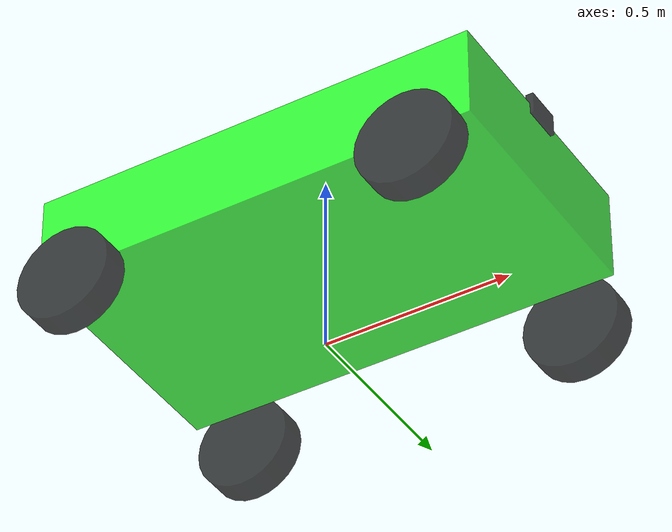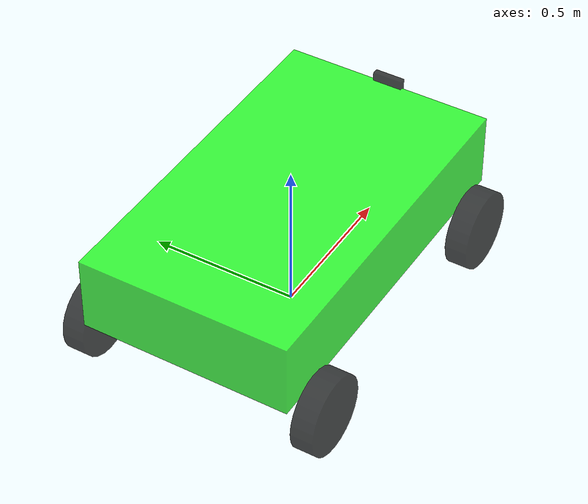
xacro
<?xml version="1.0"?>

<robot name="line_follower" xmlns:xacro="http://www.ros.org/wiki/xacro">
    <xacro:include filename="$(find line_follower_description)/urdf/variables.urdf.xacro" />
    <xacro:include filename="$(find line_follower_description)/urdf/common.urdf.xacro" />
    <xacro:include filename="$(find line_follower_description)/urdf/robot.urdf.xacro" />
    <xacro:include filename="$(find line_follower_description)/urdf/camera.plugin.urdf.xacro" />
    <xacro:include filename="$(find line_follower_description)/urdf/line_follower.gazebo.urdf.xacro" />
    <xacro:include filename="$(find line_follower_description)/urdf/plugins.urdf.xacro" />
</robot>

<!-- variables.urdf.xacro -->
<robot name="atom" xmlns:xacro="http://www.ros.org/wiki/xacro">
    <xacro:property name="base_length" value="1.2" />
    <xacro:property name="base_width" value="0.7" />
    <xacro:property name="base_height" value="0.25" />

    <xacro:property name="buffer_space_for_wheels" value="0.01" />
    <xacro:property name="wheel_radius" value="0.13" />
    <xacro:property name="wheel_length" value="0.075" />
    <xacro:property name="wheel_separation" value="${base_width + 2 * buffer_space_for_wheels}" />
    <xacro:property name="wheel_distance_from_base" value="${ wheel_radius - 0.05 }" />

    <xacro:property name="base_footprint_to_base_link_distance" value="${wheel_distance_from_base + wheel_radius}" />

    <xacro:property name="camera_length" value="0.02" />
    <xacro:property name="camera_width" value="0.10" />
    <xacro:property name="camera_height" value="0.06" />

    <xacro:property name="xyz_base_link_to_front_left_wheel" value="${ (base_length / 2) - wheel_radius } ${ (base_width / 2) + buffer_space_for_wheels } ${ -wheel_distance_from_base }" />
    <xacro:property name="xyz_base_link_to_front_right_wheel" value="${ (base_length / 2) - wheel_radius } ${ -((base_width / 2) + buffer_space_for_wheels) } ${ -wheel_distance_from_base }" />

    <xacro:property name="xyz_base_link_to_rear_left_wheel" value="${ -((base_length / 2) - wheel_radius) } ${ (base_width / 2) + buffer_space_for_wheels } ${ -wheel_distance_from_base }" />
    <xacro:property name="xyz_base_link_to_rear_right_wheel" value="${ -((base_length / 2) - wheel_radius) } ${ -((base_width / 2) + buffer_space_for_wheels) } ${ -wheel_distance_from_base }" />
</robot>

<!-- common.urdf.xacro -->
<robot name="atom" xmlns:xacro="http://www.ros.org/wiki/xacro">
    <material name="black">
        <color rgba="0 0 0 0.75" />
    </material>
    <material name="white">
        <color rgba="1 1 1 0.75" />
    </material>
    <material name="red">
        <color rgba="1 0 0 0.75" />
    </material>
    <material name="green">
        <color rgba="0 1 0 0.75" />
    </material>
    <material name="blue">
        <color rgba="0 0 1 0.75" />
    </material>

    <xacro:macro name="cuboid_inertia" params="m l w h xyz rpy">
        <inertial>
            <origin xyz="${xyz}" rpy="${rpy}"/>
            <mass value="${m}"/>
            <inertia ixx="${m/12.0 * (h*h + w*w)}" ixy="0" ixz="0"
                    iyy="${m/12.0 * (l*l + h*h)}" iyz="0"
                    izz="${m/12.0 * (w*w + l*l)}"/>
        </inertial>
    </xacro:macro>

    <xacro:macro name="cylinder_inertia" params="m r h xyz rpy">
        <inertial>
            <origin xyz="${xyz}" rpy="${rpy}" />
            <mass value="${m}" />
            <inertia ixx="${(m/12.0) * (3*r*r + h*h)}" ixy="0" ixz="0"
                     iyy="${(m/12.0) * (3*r*r + h*h)}" iyz="0"
                     izz="${m/2.0 * r*r}" />
        </inertial>
    </xacro:macro>
</robot>

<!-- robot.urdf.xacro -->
<robot name="line_follower" xmlns:xacro="http://www.ros.org/wiki/xacro">
    <xacro:macro name="wheel" params="prefix xyz rpy">
        <link name="${prefix}_wheel">
            <visual>
                <geometry>
                    <cylinder radius="${wheel_radius}" length="${wheel_length}" />
                </geometry>
                <origin xyz="${xyz}" rpy="${rpy}" />
                <material name="black" />
            </visual>
            <xacro:cylinder_inertia m="1.0" r="${wheel_radius}"
                h="${wheel_length}" xyz="${xyz}" rpy="${rpy}" />
            <collision>
                <geometry>
                    <cylinder radius="${wheel_radius}" length="${wheel_length}" />
                </geometry>
                <origin xyz="${xyz}" rpy="${rpy}" />
                <material name="black" />
            </collision>
        </link>
    </xacro:macro>

    <link name="base_footprint">
    </link>

    <link name="base_link">
        <visual>
            <geometry>
                <box size="${base_length} ${base_width} ${base_height}" />
            </geometry>
            <origin xyz="0 0 ${base_height / 2}" rpy="0 0 0" />
            <material name="green" />
        </visual>
        <xacro:cuboid_inertia m="10.0" l="${base_length}"
            w="${base_width}" h="${base_height}"
            xyz="0 0 ${base_height / 2}" rpy="0 0 0" />
        <collision>
            <geometry>
                <box size="${base_length} ${base_width} ${base_height}" />
            </geometry>
            <origin xyz="0 0 ${base_height / 2}" rpy="0 0 0" />
        </collision>
    </link>

    <xacro:wheel prefix="front_left" xyz="0 ${wheel_length / 2} 0" rpy="${pi / 2.0} 0 0" />
    <xacro:wheel prefix="front_right" xyz="0 ${-wheel_length / 2} 0" rpy="${pi / 2.0} 0 0" />
    <xacro:wheel prefix="rear_left" xyz="0 ${wheel_length / 2} 0" rpy="${pi / 2.0} 0 0" />
    <xacro:wheel prefix="rear_right" xyz="0 ${-wheel_length / 2} 0" rpy="${pi / 2.0} 0 0" />

    <joint name="base_footprint_to_base_link" type="fixed">
        <parent link="base_footprint" />
        <child link="base_link" />
        <origin xyz="0 0 0.2" rpy="0 0 0" />
    </joint>

    <joint name="base_link_to_front_left_wheel" type="continuous">
        <parent link="base_link" />
        <child link="front_left_wheel" />
        <origin xyz="${xyz_base_link_to_front_left_wheel}" rpy="0 0 0" />
        <axis xyz="0 1 0" />
    </joint>

    <joint name="base_link_to_front_right_wheel" type="continuous">
        <parent link="base_link" />
        <child link="front_right_wheel" />
        <origin xyz="${xyz_base_link_to_front_right_wheel}" rpy="0 0 0" />
        <axis xyz="0 1 0" />
    </joint>

    <joint name="base_link_to_rear_left_wheel" type="continuous">
        <parent link="base_link" />
        <child link="rear_left_wheel" />
        <origin xyz="${xyz_base_link_to_rear_left_wheel}" rpy="0 0 0" />
        <axis xyz="0 1 0" />
    </joint>

    <joint name="base_link_to_rear_right_wheel" type="continuous">
        <parent link="base_link" />
        <child link="rear_right_wheel" />
        <origin xyz="${xyz_base_link_to_rear_right_wheel}" rpy="0 0 0" />
        <axis xyz="0 1 0" />
    </joint>
</robot>

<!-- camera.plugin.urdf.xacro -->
<robot name="atom" xmlns:xacro="http://www.ros.org/wiki/xacro">
    <link name="camera">
        <visual>
            <geometry>
                <box size="${camera_length} ${camera_width} ${camera_height}" />
            </geometry>
            <origin xyz="0 0 0" rpy="0 0 0" />
            <material name="black" />
        </visual>
        <xacro:cuboid_inertia m="0.1" l="${camera_length}"
            w="${camera_width}" h="${camera_height}"
            xyz="0 0 0" rpy="0 0 0" />
        <collision>
            <geometry>
                <box size="${camera_length} ${camera_width} ${camera_height}" />
            </geometry>
            <origin xyz="0 0 0" rpy="0 0 0" />
        </collision>
    </link>

    <joint name="base_link_to_camera" type="fixed">
        <parent link="base_link" />
        <child link="camera" />
        <origin xyz="${base_length / 2} 0 ${base_height}" rpy="0 0 0" />
    </joint>

    <gazebo reference="camera">
        <sensor name="camera_sensor" type="camera">
            <camera name="camera_sensor">
                <image>
                    <width>1920</width>
                    <height>1080</height>
                </image>
            </camera>
            <pose>0 0 0 0 0 0</pose>
            <visualize>true</visualize>
            <update_rate>30.0</update_rate>

            <plugin name="camera_controller" filename="libgazebo_ros_camera.so">
                <frame_name>primary_camera_frame</frame_name>
            </plugin>
        </sensor>
    </gazebo>

</robot>
